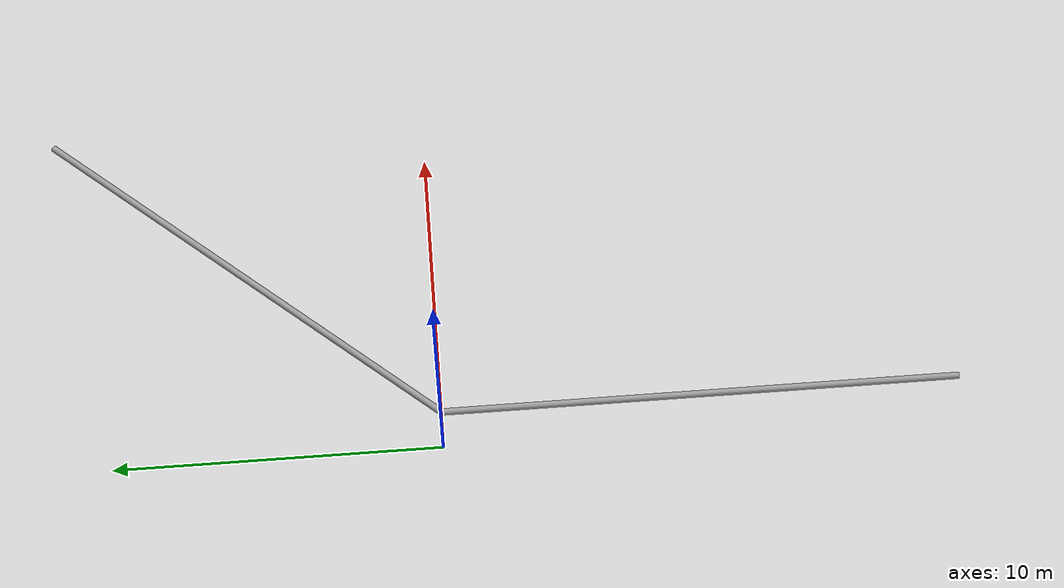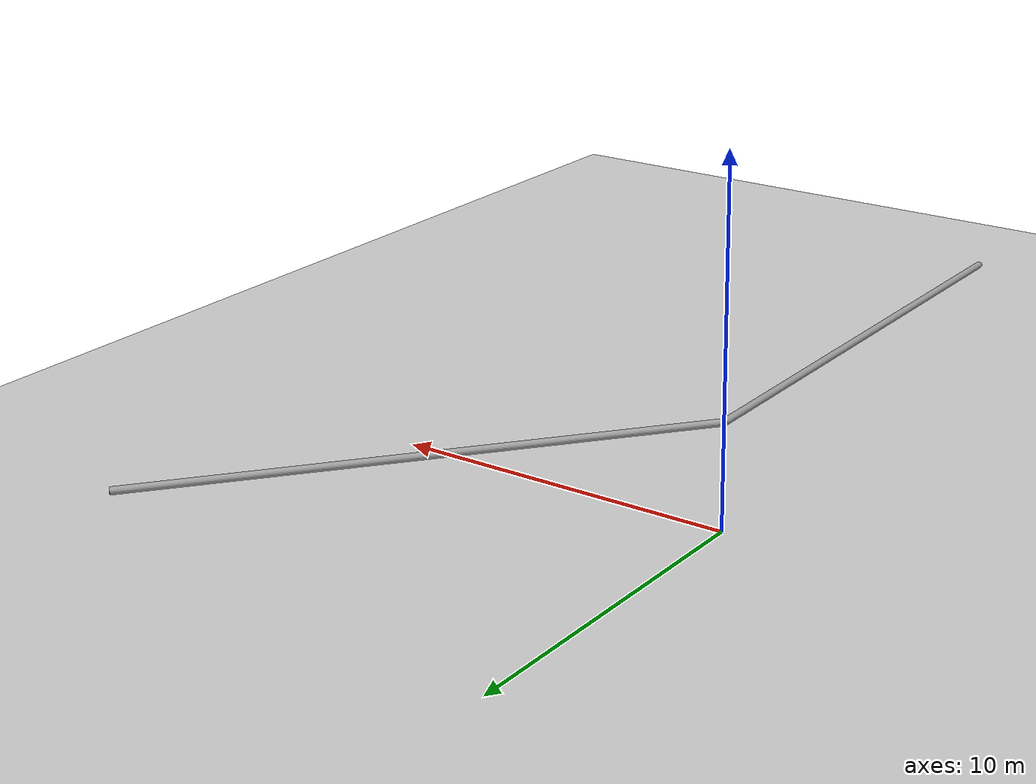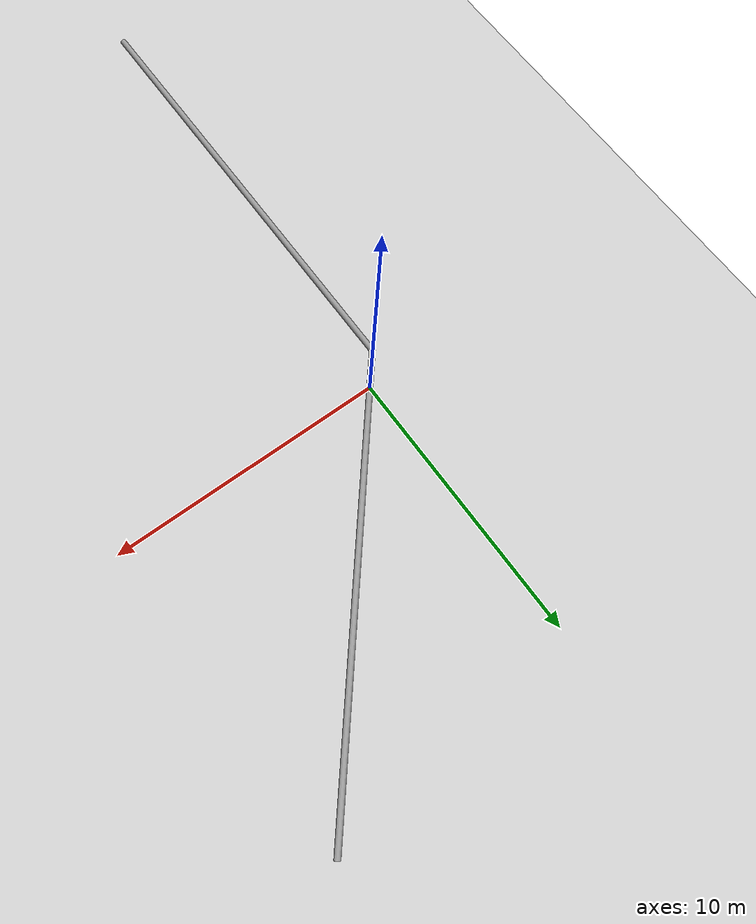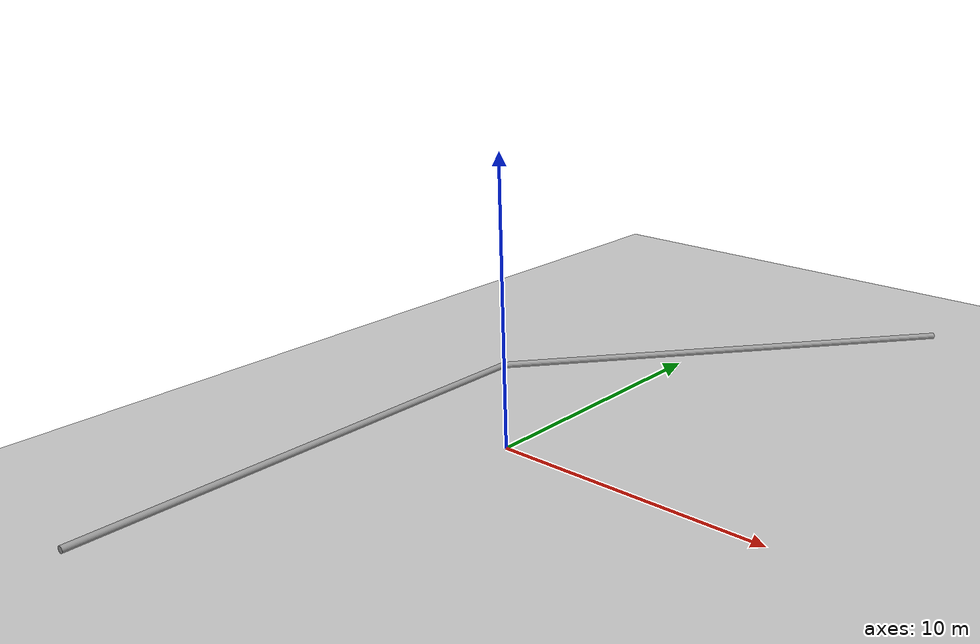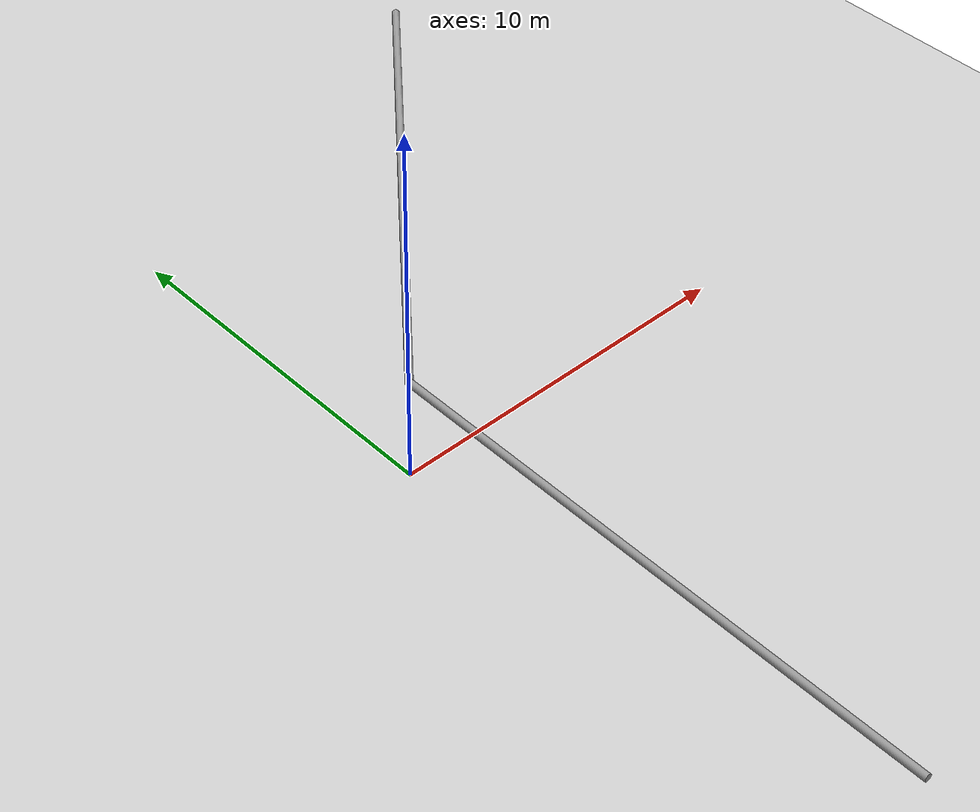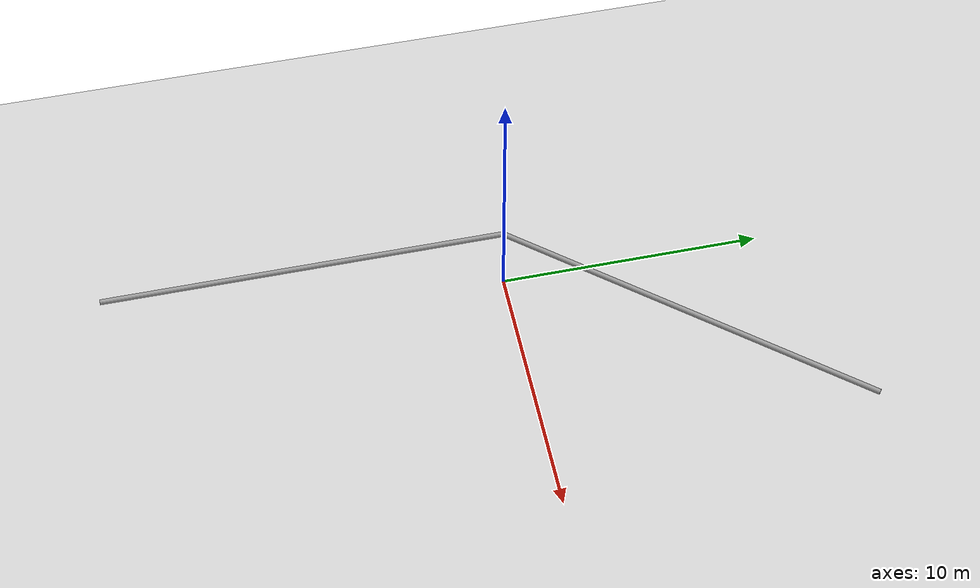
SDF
<sdf version="1.4">
  <world name="default">
    <light name="sun" type="directional">
      <cast_shadows>1</cast_shadows>
      <pose>0 0 10 0 -0 0</pose>
      <diffuse>0.8 0.8 0.8 1</diffuse>
      <specular>0.2 0.2 0.2 1</specular>
      <attenuation>
        <range>1000</range>
        <constant>0.9</constant>
        <linear>0.01</linear>
        <quadratic>0.001</quadratic>
      </attenuation>
      <direction>-0.5 0.1 -0.9</direction>
    </light>
    <physics type="ode">
      <max_step_size>0.01</max_step_size>
      <real_time_factor>5</real_time_factor>
      <real_time_update_rate>500</real_time_update_rate>
            <gravity>0 0 -9.8</gravity>

    </physics>
    <scene>
      <ambient>0.4 0.4 0.4 1</ambient>
      <background>0.7 0.7 0.7 1</background>
      <shadows>0</shadows>
    </scene>
    <model name='ground_plane'>
      <static>1</static>
      <link name='link'>
        <collision name='collision'>
          <geometry>
            <plane>
              <normal>0 0 1</normal>
              <size>100 100</size>
            </plane>
          </geometry>
          <surface>
            <contact>
              <collide_bitmask>65535</collide_bitmask>
              <ode/>
            </contact>
            <friction>
              <ode>
                <mu>100</mu>
                <mu2>50</mu2>
              </ode>
              <torsional>
                <ode/>
              </torsional>
            </friction>
            <bounce/>
          </surface>
          <max_contacts>10</max_contacts>
        </collision>
        <visual name='visual'>
          <cast_shadows>0</cast_shadows>
          <geometry>
            <plane>
              <normal>0 0 1</normal>
              <size>100 100</size>
            </plane>
          </geometry>
          <material>
            <script>
              <uri>file://media/materials/scripts/gazebo.material</uri>
              <name>Gazebo/Grey</name>
            </script>
          </material>
        </visual>
        <self_collide>0</self_collide>
        <enable_wind>0</enable_wind>
        <kinematic>0</kinematic>
      </link>
    </model>
    <include>
        <uri>model://demo_line</uri>
        <name>demo_line</name>
        <pose>0 -7.5 3 0 0 0</pose>
    </include>
    <include>
        <uri>model://demo_line</uri>
        <name>previous_line</name>
        <pose>4.8 5.7 3 0 0 -0.698131701</pose>
    </include>
    <gui fullscreen="0">
      <camera name="user_camera">
        <pose>1.49016 -3.72367 3.62379 -2.88294e-17 0.273797 1.4042</pose>
        <view_controller>orbit</view_controller>
      </camera>
    </gui>

</world>
</sdf>

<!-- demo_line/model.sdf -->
<sdf version='1.7'>
  <model name='demo_line'>
    <link name='link_2'>
      <inertial>
        <mass>1</mass>
        <inertia>
          <ixx>0.145833</ixx>
          <ixy>0</ixy>
          <ixz>0</ixz>
          <iyy>0.145833</iyy>
          <iyz>0</iyz>
          <izz>0.125</izz>
        </inertia>
        <pose>0 0 0 0 -0 0</pose>
      </inertial>
      <pose>0 0 0 1.5708 -0 0</pose>
      <gravity>1</gravity>
      <self_collide>0</self_collide>
      <kinematic>0</kinematic>
      <enable_wind>0</enable_wind>
      <visual name='visual'>
        <pose>0 0 0 0 -0 0</pose>
        <geometry>
          <cylinder>
            <radius>0.1</radius>
            <length>15</length>
          </cylinder>
        </geometry>
        <material>
          <lighting>1</lighting>
          <script>
            <uri>file://media/materials/scripts/gazebo.material</uri>
            <name>Gazebo/Grey</name>
          </script>
          <shader type='pixel'>
            <normal_map>__default__</normal_map>
          </shader>
          <ambient>0.3 0.3 0.3 1</ambient>
          <diffuse>0.7 0.7 0.7 1</diffuse>
          <specular>0.01 0.01 0.01 1</specular>
          <emissive>0 0 0 1</emissive>
        </material>
        <transparency>0</transparency>
        <cast_shadows>1</cast_shadows>
      </visual>
      <collision name='collision'>
        <laser_retro>0</laser_retro>
        <max_contacts>10</max_contacts>
        <pose>0 0 0 0 -0 0</pose>
        <geometry>
          <cylinder>
            <radius>0.1</radius>
            <length>10</length>
          </cylinder>
        </geometry>
        <surface>
          <friction>
            <ode>
              <mu>1</mu>
              <mu2>1</mu2>
              <fdir1>0 0 0</fdir1>
              <slip1>0</slip1>
              <slip2>0</slip2>
            </ode>
            <torsional>
              <coefficient>1</coefficient>
              <patch_radius>0</patch_radius>
              <surface_radius>0</surface_radius>
              <use_patch_radius>1</use_patch_radius>
              <ode>
                <slip>0</slip>
              </ode>
            </torsional>
          </friction>
          <bounce>
            <restitution_coefficient>0</restitution_coefficient>
            <threshold>1e+06</threshold>
          </bounce>
          <contact>
            <collide_without_contact>0</collide_without_contact>
            <collide_without_contact_bitmask>1</collide_without_contact_bitmask>
            <collide_bitmask>1</collide_bitmask>
            <ode>
              <soft_cfm>0</soft_cfm>
              <soft_erp>0.2</soft_erp>
              <kp>1e+13</kp>
              <kd>1</kd>
              <max_vel>0.01</max_vel>
              <min_depth>0</min_depth>
            </ode>
            <bullet>
              <split_impulse>1</split_impulse>
              <split_impulse_penetration_threshold>-0.01</split_impulse_penetration_threshold>
              <soft_cfm>0</soft_cfm>
              <soft_erp>0.2</soft_erp>
              <kp>1e+13</kp>
              <kd>1</kd>
            </bullet>
          </contact>
        </surface>
      </collision>
    </link>
    <static>1</static>
    <allow_auto_disable>1</allow_auto_disable>
  </model>
</sdf>
